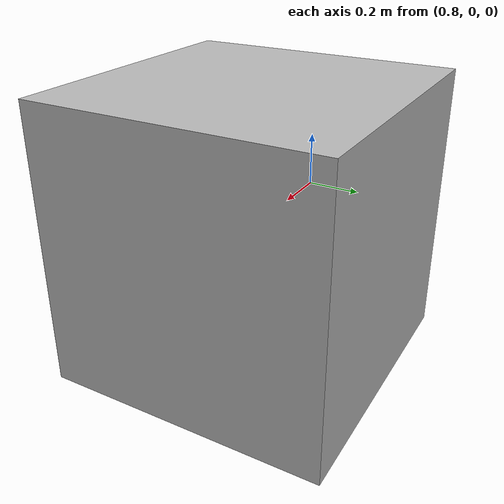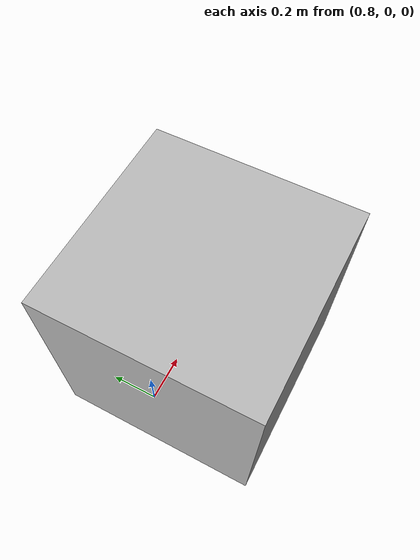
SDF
<?xml version="1.0"?>
<sdf version="1.6">
  <model name="model_01">
    <pose>1.0 0 0.0 0 0 0</pose>
    <link name="link_01">
      <pose>0.25 0 0.0 0 0 0</pose>
      <collision name="collision_01">
        <geometry>
          <box>
            <size>1 1 1</size>
          </box>
        </geometry>
      </collision>
      <visual name="visual_01">
        <geometry>
          <box>
            <size>1 1 1</size>
          </box>
        </geometry>
      </visual>
    </link>
  </model>
</sdf>
